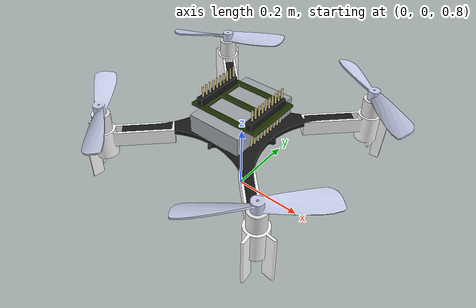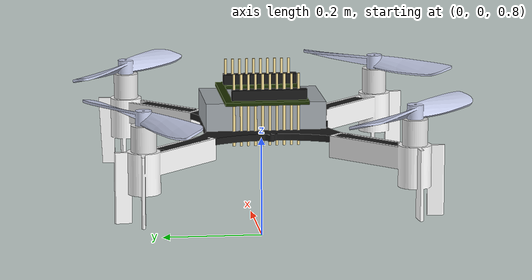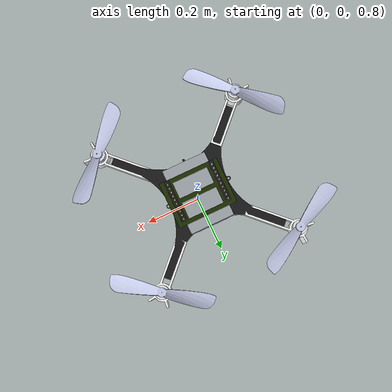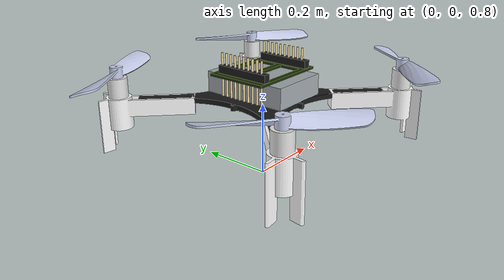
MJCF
<mujoco model="CF2 scene">
  <include file="cf2_10x.xml"/>

  <statistic center="0 0 0.3" extent="10.0" meansize="0.05"/>

  <visual>
    <headlight diffuse="0.9 0.9 0.9" ambient="0.3 0.3 0.3" specular="0.1 0.1 0.1"/>
    <rgba haze="0.1 0.1 0.1 1"/>
  </visual>

  <asset>
    <texture type="skybox" builtin="gradient"
            rgb1="0.2 0.3 0.5"
            rgb2="0.05 0.1 0.2"
            width="512" height="3072"/>
  </asset>

  <worldbody>
    <light pos="0 0 1.5" dir="0 0 -1" directional="true"/>
    <camera name="overview" pos="0 0 0" euler="0 0 135" fovy="45"/>
  </worldbody>
</mujoco>

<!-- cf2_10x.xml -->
<mujoco model="cf2">
  <option integrator="RK4" density="1.225" viscosity="1.8e-5"/>
  <compiler inertiafromgeom="false" meshdir="assets" autolimits="true"/>

  <default>
    <default class="cf2">
      <default class="visual">
        <geom group="2" type="mesh" contype="0" conaffinity="0"/>
      </default>
      <default class="collision">
        <geom group="3" type="mesh"/>
      </default>
      <site group="5"/>
    </default>
  </default>

<asset>
  <material name="polished_plastic" rgba="0.631 0.659 0.678 1"/>
  <material name="polished_gold" rgba="0.969 0.878 0.6 1"/>
  <material name="medium_gloss_plastic" rgba="0.109 0.184 0.0 1"/>
  <material name="propeller_plastic" rgba="0.792 0.820 0.933 1"/>
  <material name="white" rgba="1 1 1 1"/>
  <material name="body_frame_plastic" rgba="0.102 0.102 0.102 1"/>
  <material name="burnished_chrome" rgba="0.898 0.898 0.898 1"/>

  <!-- Visual meshes -->
  <mesh name="cf2_0" file="cf2_0.obj" scale="8 8 8"/>
  <mesh name="cf2_1" file="cf2_1.obj" scale="8 8 8"/>
  <mesh name="cf2_2" file="cf2_2.obj" scale="8 8 8"/>
  <mesh name="cf2_3" file="cf2_3.obj" scale="8 8 8"/>
  <mesh name="cf2_4" file="cf2_4.obj" scale="8 8 8"/>
  <mesh name="cf2_5" file="cf2_5.obj" scale="8 8 8"/>
  <mesh name="cf2_6" file="cf2_6.obj" scale="8 8 8"/>

  <!-- Collision meshes -->
  <mesh name="cf2_collision_0" file="cf2_collision_0.obj" scale="8 8 8"/>
  <mesh name="cf2_collision_1" file="cf2_collision_1.obj" scale="8 8 8"/>
  <mesh name="cf2_collision_2" file="cf2_collision_2.obj" scale="8 8 8"/>
  <mesh name="cf2_collision_3" file="cf2_collision_3.obj" scale="8 8 8"/>
  <mesh name="cf2_collision_4" file="cf2_collision_4.obj" scale="8 8 8"/>
  <mesh name="cf2_collision_5" file="cf2_collision_5.obj" scale="8 8 8"/>
  <mesh name="cf2_collision_6" file="cf2_collision_6.obj" scale="8 8 8"/>
  <mesh name="cf2_collision_7" file="cf2_collision_7.obj" scale="8 8 8"/>
  <mesh name="cf2_collision_8" file="cf2_collision_8.obj" scale="8 8 8"/>
  <mesh name="cf2_collision_9" file="cf2_collision_9.obj" scale="8 8 8"/>
  <mesh name="cf2_collision_10" file="cf2_collision_10.obj" scale="8 8 8"/>
  <mesh name="cf2_collision_11" file="cf2_collision_11.obj" scale="8 8 8"/>
  <mesh name="cf2_collision_12" file="cf2_collision_12.obj" scale="8 8 8"/>
  <mesh name="cf2_collision_13" file="cf2_collision_13.obj" scale="8 8 8"/>
  <mesh name="cf2_collision_14" file="cf2_collision_14.obj" scale="8 8 8"/>
  <mesh name="cf2_collision_15" file="cf2_collision_15.obj" scale="8 8 8"/>
  <mesh name="cf2_collision_16" file="cf2_collision_16.obj" scale="8 8 8"/>
  <mesh name="cf2_collision_17" file="cf2_collision_17.obj" scale="8 8 8"/>
  <mesh name="cf2_collision_18" file="cf2_collision_18.obj" scale="8 8 8"/>
  <mesh name="cf2_collision_19" file="cf2_collision_19.obj" scale="8 8 8"/>
  <mesh name="cf2_collision_20" file="cf2_collision_20.obj" scale="8 8 8"/>
  <mesh name="cf2_collision_21" file="cf2_collision_21.obj" scale="8 8 8"/>
  <mesh name="cf2_collision_22" file="cf2_collision_22.obj" scale="8 8 8"/>
  <mesh name="cf2_collision_23" file="cf2_collision_23.obj" scale="8 8 8"/>
  <mesh name="cf2_collision_24" file="cf2_collision_24.obj" scale="8 8 8"/>
  <mesh name="cf2_collision_25" file="cf2_collision_25.obj" scale="8 8 8"/>
  <mesh name="cf2_collision_26" file="cf2_collision_26.obj" scale="8 8 8"/>
  <mesh name="cf2_collision_27" file="cf2_collision_27.obj" scale="8 8 8"/>
  <mesh name="cf2_collision_28" file="cf2_collision_28.obj" scale="8 8 8"/>
  <mesh name="cf2_collision_29" file="cf2_collision_29.obj" scale="8 8 8"/>
  <mesh name="cf2_collision_30" file="cf2_collision_30.obj" scale="8 8 8"/>
  <mesh name="cf2_collision_31" file="cf2_collision_31.obj" scale="8 8 8"/>
</asset>

  <worldbody>
    <body name="cf2" pos="0 0 1.0" childclass="cf2">
      <freejoint/>
      <inertial pos="0 0 0" mass="0.027" diaginertia="2.3951e-5 2.3951e-5 3.2347e-5"/>
      <camera name="track" pos="-1 0 .5" xyaxes="0 -1 0 1 0 2" mode="trackcom"/>
      <geom mesh="cf2_0" material="propeller_plastic" class="visual"/>
      <geom mesh="cf2_1" material="medium_gloss_plastic" class="visual"/>
      <geom mesh="cf2_2" material="polished_gold" class="visual"/>
      <geom mesh="cf2_3" material="polished_plastic" class="visual"/>
      <geom mesh="cf2_4" material="burnished_chrome" class="visual"/>
      <geom mesh="cf2_5" material="body_frame_plastic" class="visual"/>
      <geom mesh="cf2_6" material="white" class="visual"/>
      <geom mesh="cf2_collision_0" class="collision"/>
      <geom mesh="cf2_collision_1" class="collision"/>
      <geom mesh="cf2_collision_2" class="collision"/>
      <geom mesh="cf2_collision_3" class="collision"/>
      <geom mesh="cf2_collision_4" class="collision"/>
      <geom mesh="cf2_collision_5" class="collision"/>
      <geom mesh="cf2_collision_6" class="collision"/>
      <geom mesh="cf2_collision_7" class="collision"/>
      <geom mesh="cf2_collision_8" class="collision"/>
      <geom mesh="cf2_collision_9" class="collision"/>
      <geom mesh="cf2_collision_10" class="collision"/>
      <geom mesh="cf2_collision_11" class="collision"/>
      <geom mesh="cf2_collision_12" class="collision"/>
      <geom mesh="cf2_collision_13" class="collision"/>
      <geom mesh="cf2_collision_14" class="collision"/>
      <geom mesh="cf2_collision_15" class="collision"/>
      <geom mesh="cf2_collision_16" class="collision"/>
      <geom mesh="cf2_collision_17" class="collision"/>
      <geom mesh="cf2_collision_18" class="collision"/>
      <geom mesh="cf2_collision_19" class="collision"/>
      <geom mesh="cf2_collision_20" class="collision"/>
      <geom mesh="cf2_collision_21" class="collision"/>
      <geom mesh="cf2_collision_22" class="collision"/>
      <geom mesh="cf2_collision_23" class="collision"/>
      <geom mesh="cf2_collision_24" class="collision"/>
      <geom mesh="cf2_collision_25" class="collision"/>
      <geom mesh="cf2_collision_26" class="collision"/>
      <geom mesh="cf2_collision_27" class="collision"/>
      <geom mesh="cf2_collision_28" class="collision"/>
      <geom mesh="cf2_collision_29" class="collision"/>
      <geom mesh="cf2_collision_30" class="collision"/>
      <geom mesh="cf2_collision_31" class="collision"/>
      <site name="imu"/>
      <site name="actuation"/>
    </body>
  </worldbody>

  <actuator>
    <motor class="cf2" ctrlrange="0 0.35" gear="0 0 1 0 0 0" site="actuation" name="body_thrust"/>
    <motor class="cf2" ctrlrange="-1 1" gear="0 0 0 -0.00001 0 0" site="actuation" name="x_moment"/>
    <motor class="cf2" ctrlrange="-1 1" gear="0 0 0 0 -0.00001 0" site="actuation" name="y_moment"/>
    <motor class="cf2" ctrlrange="-1 1" gear="0 0 0 0 0 -0.00001" site="actuation" name="z_moment"/>
  </actuator>

  <sensor>
    <gyro name="body_gyro" site="imu"/>
    <accelerometer name="body_linacc" site="imu"/>
    <framequat name="body_quat" objtype="site" objname="imu"/>
  </sensor>

  <keyframe>
    <key name="hover" qpos="0 0 1.0 1 0 0 0" ctrl="0.26487 0 0 0"/>
  </keyframe>
</mujoco>
